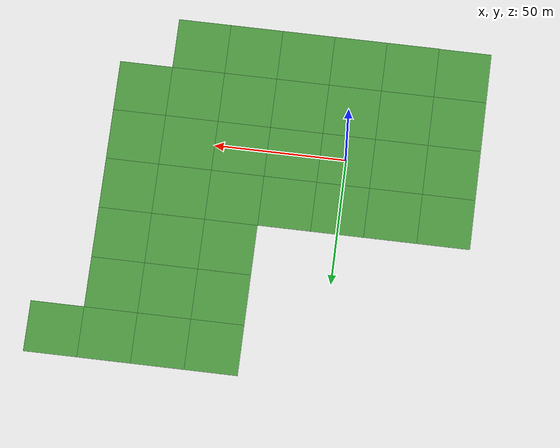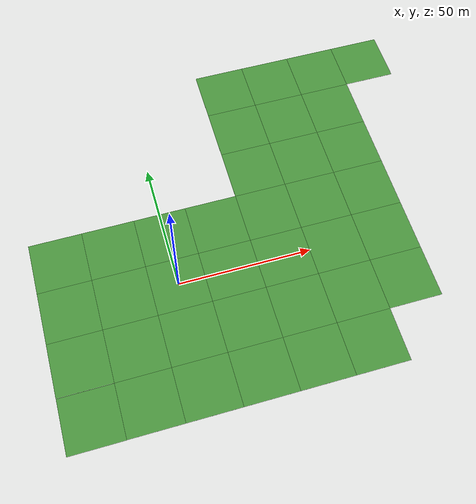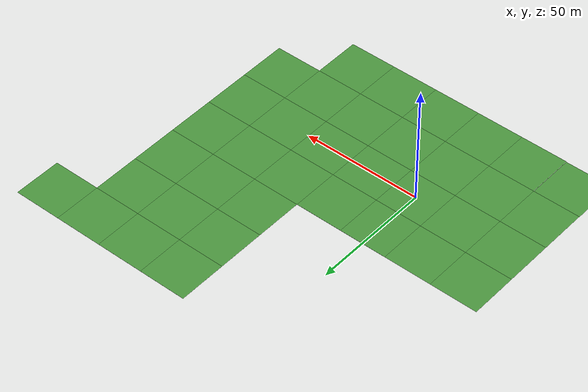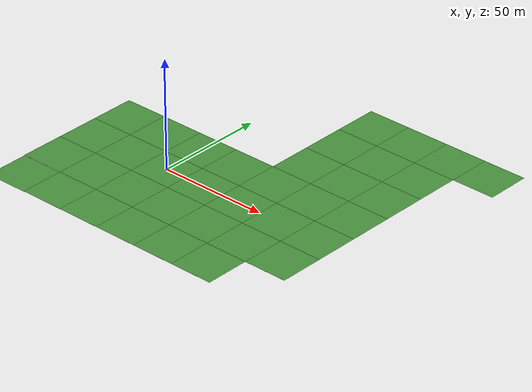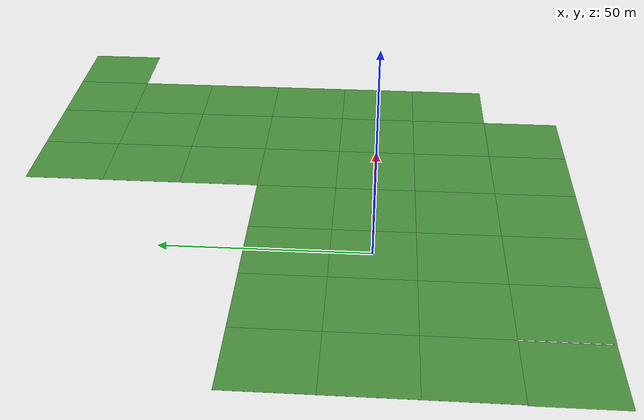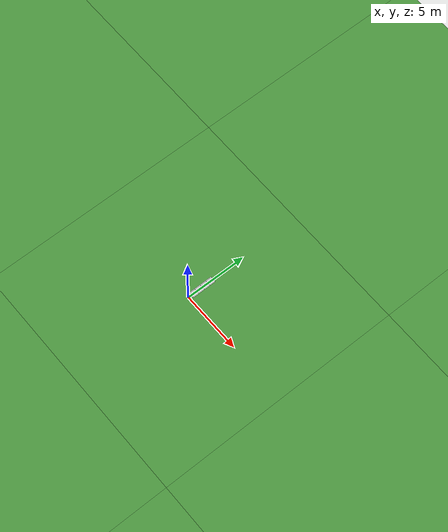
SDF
<sdf version="1.4">
 <world name="default">
  <scene><ambient>0.2 0.2 0.2 1.0</ambient><grid>false</grid></scene>
  <physics type="ode">
   <gravity>0 0 -9.81</gravity>
   <ode>
    <solver>
     <use_dynamic_moi_rescaling>true</use_dynamic_moi_rescaling>
     <type>quick</type>
     <iters>20</iters>
     <sor>1.4</sor>
    </solver>
   </ode>
  </physics>
  <light type="directional" name="sun">
   <cast_shadows>false</cast_shadows>
   <pose>0 0 100 0 0 0</pose>
   <diffuse>0.8 0.8 0.8 1</diffuse>
   <specular>0.9 0.9 0.9 1</specular>
   <attenuation>
    <range>1000</range>
    <constant>0.9</constant>
    <linear>0.01</linear>
    <quadratic>0.001</quadratic>
   </attenuation>
   <direction>0.2 0.2 -0.9</direction>
  </light>
  <include><pose>0 0.5 0.011 0 0 0</pose><uri>model://concrete_slab_small</uri></include>
  <include><pose>0 1.0 0.011 0 0 0</pose><uri>model://concrete_slab_small</uri></include>
  <include><pose>0 1.5 0.011 0 0 0</pose><uri>model://concrete_slab_small</uri></include>
  <include><pose>0 2.0 0.011 0 0 0</pose><uri>model://concrete_slab_small</uri></include>
  <plugin name="SimEvents" filename="libSimEventsPlugin.so">
   <region><name>slab_0</name><volume><min>-0.5 0.5  0</min><max>0.5 1.0 10</max></volume></region>
   <region><name>slab_1</name><volume><min>-0.5 1.0  0</min><max>0.5 1.5 10</max></volume></region>
   <region><name>slab_2</name><volume><min>-0.5 1.5  0</min><max>0.5 2.0 10</max></volume></region>
   <region><name>slab_3</name><volume><min>-0.5 2.0  0</min><max>0.5 2.5 10</max></volume></region>
   <event><name>state</name><type>sim_state</type></event>
   <event><name>existence</name><type>existence</type></event>
   <event><name>on_slab_0</name><type>inclusion</type><model>vehicle</model><region>slab_0</region></event>
   <event><name>on_slab_1</name><type>inclusion</type><model>vehicle</model><region>slab_1</region></event>
   <event><name>on_slab_2</name><type>inclusion</type><model>vehicle</model><region>slab_2</region></event>
   <event><name>on_slab_3</name><type>inclusion</type><model>vehicle</model><region>slab_3</region></event>
  </plugin>
  <include><uri>model://vrc_driving_terrain</uri></include>
  <model name="road_boxes">
   <static>true</static>
   <link name="link">
    <collision name="collision_0">
     <pose>0 5 0 0 0 0</pose>
     <geometry><box><size>7.34 12 0.02</size></box></geometry>
     <surface><friction><ode><mu>0.8</mu><mu2>0.8</mu2></ode></friction></surface>
    </collision>
    <collision name="collision_1">
     <pose>51 10 0 0 0 0</pose>
     <geometry><box><size>102 7.34 0.02</size></box></geometry>
     <surface><friction><ode><mu>0.8</mu><mu2>0.8</mu2></ode></friction></surface>
    </collision>
    <collision name="collision_2">
     <pose>125 25 0 0 0 0.78539</pose>
     <geometry><box><size>72 7.34 0.02</size></box></geometry>
     <surface><friction><ode><mu>0.8</mu><mu2>0.8</mu2></ode></friction></surface>
    </collision>
    <collision name="collision_3">
     <pose>150 75 0 0 0 0</pose>
     <geometry><box><size>7.34 53 0.02</size></box></geometry>
     <surface><friction><ode><mu>0.8</mu><mu2>0.8</mu2></ode></friction></surface>
    </collision>
    <collision name="collision_4">
     <pose>173.5 100 0 0 0 0</pose>
     <geometry><box><size>54.5 7.34 0.02</size></box></geometry>
     <surface><friction><ode><mu>0.8</mu><mu2>0.8</mu2></ode></friction></surface>
    </collision>
    <collision name="collision_5">
     <pose>198 106 0 0 0 0</pose>
     <geometry><box><size>6 5 0.02</size></box></geometry>
     <surface><friction><ode><mu>0.8</mu><mu2>0.8</mu2></ode></friction></surface>
    </collision>
   </link>
  </model>
 </world>
</sdf>

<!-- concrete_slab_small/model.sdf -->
<sdf version="1.5">
  <model name="concrete_slab_small">
    <static>true</static>

    <link name="slab">
      <pose>0 0 0.0001 0 0 0</pose>
      <collision name="collision">
        <geometry>
          <plane>
            <normal>0 0 1</normal>
            <size>0.5 0.5</size>
          </plane>
        </geometry>
        <surface>
          <friction>
            <ode>
              <mu>100</mu>
              <mu2>50</mu2>
            </ode>
          </friction>
        </surface>
      </collision>

      <visual name="concrete">
        <cast_shadows>false</cast_shadows>
        <geometry>
          <plane>
            <normal>0 0 1</normal>
            <size>0.5 0.5</size>
          </plane>
        </geometry>
        <material>
          <script>
            <uri>model://concrete_slab/materials/scripts/</uri>
            <uri>model://concrete_slab/materials/textures/</uri>
            <name>Mentor2/ConcreteSlab</name>
          </script>
        </material>
      </visual>
    </link>
  </model>
</sdf>

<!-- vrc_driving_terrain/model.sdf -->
<sdf version="1.5">
  <model name="vrc_driving_terrain">
    <static>true</static>
    <link name="link">
    </link>
    <link name="grass_plane">
      <collision name="collision">
        <geometry>
          <plane>
            <normal>0 0 1</normal>
            <size>100 100</size>
          </plane>
        </geometry>
        <surface>
          <friction>
            <ode>
              <mu>0.5</mu>
              <mu2>.5</mu2>
            </ode>
          </friction>
        </surface>
      </collision>
      <visual name="visual_0">
        <pose>-40 -40 0 0 0 0</pose>
        <cast_shadows>false</cast_shadows>
        <geometry>
          <plane>
            <normal>0 0 1</normal>
            <size>20 20</size>
          </plane>
        </geometry>
        <material>
          <script>
            <uri>model://vrc_driving_terrain/materials/scripts</uri>
            <uri>model://vrc_driving_terrain/materials/textures</uri>
            <name>vrc/grass</name>
          </script>
        </material>
      </visual>
      <visual name="visual_1">
        <pose>-20 -40 0 0 0 0</pose>
        <cast_shadows>false</cast_shadows>
        <geometry>
          <plane>
            <normal>0 0 1</normal>
            <size>20 20</size>
          </plane>
        </geometry>
        <material>
          <script>
            <uri>model://vrc_driving_terrain/materials/scripts</uri>
            <uri>model://vrc_driving_terrain/materials/textures</uri>
            <name>vrc/grass</name>
          </script>
        </material>
      </visual>
      <visual name="visual_2">
        <pose>0 -40 0 0 0 0</pose>
        <cast_shadows>false</cast_shadows>
        <geometry>
          <plane>
            <normal>0 0 1</normal>
            <size>20 20</size>
          </plane>
        </geometry>
        <material>
          <script>
            <uri>model://vrc_driving_terrain/materials/scripts</uri>
            <uri>model://vrc_driving_terrain/materials/textures</uri>
            <name>vrc/grass</name>
          </script>
        </material>
      </visual>
      <visual name="visual_3">
        <pose>20 -40 0 0 0 0</pose>
        <cast_shadows>false</cast_shadows>
        <geometry>
          <plane>
            <normal>0 0 1</normal>
            <size>20 20</size>
          </plane>
        </geometry>
        <material>
          <script>
            <uri>model://vrc_driving_terrain/materials/scripts</uri>
            <uri>model://vrc_driving_terrain/materials/textures</uri>
            <name>vrc/grass</name>
          </script>
        </material>
      </visual>
      <visual name="visual_4">
        <pose>40 -40 0 0 0 0</pose>
        <cast_shadows>false</cast_shadows>
        <geometry>
          <plane>
            <normal>0 0 1</normal>
            <size>20 20</size>
          </plane>
        </geometry>
        <material>
          <script>
            <uri>model://vrc_driving_terrain/materials/scripts</uri>
            <uri>model://vrc_driving_terrain/materials/textures</uri>
            <name>vrc/grass</name>
          </script>
        </material>
      </visual>
      <visual name="visual_5">
        <pose>60 -40 0 0 0 0</pose>
        <cast_shadows>false</cast_shadows>
        <geometry>
          <plane>
            <normal>0 0 1</normal>
            <size>20 20</size>
          </plane>
        </geometry>
        <material>
          <script>
            <uri>model://vrc_driving_terrain/materials/scripts</uri>
            <uri>model://vrc_driving_terrain/materials/textures</uri>
            <name>vrc/grass</name>
          </script>
        </material>
      </visual>
      <visual name="visual_6">
        <pose>-40 -20 0 0 0 0</pose>
        <cast_shadows>false</cast_shadows>
        <geometry>
          <plane>
            <normal>0 0 1</normal>
            <size>20 20</size>
          </plane>
        </geometry>
        <material>
          <script>
            <uri>model://vrc_driving_terrain/materials/scripts</uri>
            <uri>model://vrc_driving_terrain/materials/textures</uri>
            <name>vrc/grass</name>
          </script>
        </material>
      </visual>
      <visual name="visual_7">
        <pose>-20 -20 0 0 0 0</pose>
        <cast_shadows>false</cast_shadows>
        <geometry>
          <plane>
            <normal>0 0 1</normal>
            <size>20 20</size>
          </plane>
        </geometry>
        <material>
          <script>
            <uri>model://vrc_driving_terrain/materials/scripts</uri>
            <uri>model://vrc_driving_terrain/materials/textures</uri>
            <name>vrc/grass</name>
          </script>
        </material>
      </visual>
      <visual name="visual_8">
        <pose>0 -20 0 0 0 0</pose>
        <cast_shadows>false</cast_shadows>
        <geometry>
          <plane>
            <normal>0 0 1</normal>
            <size>20 20</size>
          </plane>
        </geometry>
        <material>
          <script>
            <uri>model://vrc_driving_terrain/materials/scripts</uri>
            <uri>model://vrc_driving_terrain/materials/textures</uri>
            <name>vrc/grass</name>
          </script>
        </material>
      </visual>
      <visual name="visual_9">
        <pose>20 -20 0 0 0 0</pose>
        <cast_shadows>false</cast_shadows>
        <geometry>
          <plane>
            <normal>0 0 1</normal>
            <size>20 20</size>
          </plane>
        </geometry>
        <material>
          <script>
            <uri>model://vrc_driving_terrain/materials/scripts</uri>
            <uri>model://vrc_driving_terrain/materials/textures</uri>
            <name>vrc/grass</name>
          </script>
        </material>
      </visual>
      <visual name="visual_10">
        <pose>40 -20 0 0 0 0</pose>
        <cast_shadows>false</cast_shadows>
        <geometry>
          <plane>
            <normal>0 0 1</normal>
            <size>20 20</size>
          </plane>
        </geometry>
        <material>
          <script>
            <uri>model://vrc_driving_terrain/materials/scripts</uri>
            <uri>model://vrc_driving_terrain/materials/textures</uri>
            <name>vrc/grass</name>
          </script>
        </material>
      </visual>
      <visual name="visual_11">
        <pose>60 -20 0 0 0 0</pose>
        <cast_shadows>false</cast_shadows>
        <geometry>
          <plane>
            <normal>0 0 1</normal>
            <size>20 20</size>
          </plane>
        </geometry>
        <material>
          <script>
            <uri>model://vrc_driving_terrain/materials/scripts</uri>
            <uri>model://vrc_driving_terrain/materials/textures</uri>
            <name>vrc/grass</name>
          </script>
        </material>
      </visual>
      <visual name="visual_12">
        <pose>80 -20 0 0 0 0</pose>
        <cast_shadows>false</cast_shadows>
        <geometry>
          <plane>
            <normal>0 0 1</normal>
            <size>20 20</size>
          </plane>
        </geometry>
        <material>
          <script>
            <uri>model://vrc_driving_terrain/materials/scripts</uri>
            <uri>model://vrc_driving_terrain/materials/textures</uri>
            <name>vrc/grass</name>
          </script>
        </material>
      </visual>
      <visual name="visual_13">
        <pose>-40 0 0 0 0 0</pose>
        <cast_shadows>false</cast_shadows>
        <geometry>
          <plane>
            <normal>0 0 1</normal>
            <size>20 20</size>
          </plane>
        </geometry>
        <material>
          <script>
            <uri>model://vrc_driving_terrain/materials/scripts</uri>
            <uri>model://vrc_driving_terrain/materials/textures</uri>
            <name>vrc/grass</name>
          </script>
        </material>
      </visual>
      <visual name="visual_14">
        <pose>-20 0 0 0 0 0</pose>
        <cast_shadows>false</cast_shadows>
        <geometry>
          <plane>
            <normal>0 0 1</normal>
            <size>20 20</size>
          </plane>
        </geometry>
        <material>
          <script>
            <uri>model://vrc_driving_terrain/materials/scripts</uri>
            <uri>model://vrc_driving_terrain/materials/textures</uri>
            <name>vrc/grass</name>
          </script>
        </material>
      </visual>
      <visual name="visual_15">
        <pose>0 0 0 0 0 0</pose>
        <cast_shadows>false</cast_shadows>
        <geometry>
          <plane>
            <normal>0 0 1</normal>
            <size>20 20</size>
          </plane>
        </geometry>
        <material>
          <script>
            <uri>model://vrc_driving_terrain/materials/scripts</uri>
            <uri>model://vrc_driving_terrain/materials/textures</uri>
            <name>vrc/grass</name>
          </script>
        </material>
      </visual>
      <visual name="visual_16">
        <pose>20 0 0 0 0 0</pose>
        <cast_shadows>false</cast_shadows>
        <geometry>
          <plane>
            <normal>0 0 1</normal>
            <size>20 20</size>
          </plane>
        </geometry>
        <material>
          <script>
            <uri>model://vrc_driving_terrain/materials/scripts</uri>
            <uri>model://vrc_driving_terrain/materials/textures</uri>
            <name>vrc/grass</name>
          </script>
        </material>
      </visual>
      <visual name="visual_17">
        <pose>40 0 0 0 0 0</pose>
        <cast_shadows>false</cast_shadows>
        <geometry>
          <plane>
            <normal>0 0 1</normal>
            <size>20 20</size>
          </plane>
        </geometry>
        <material>
          <script>
            <uri>model://vrc_driving_terrain/materials/scripts</uri>
            <uri>model://vrc_driving_terrain/materials/textures</uri>
            <name>vrc/grass</name>
          </script>
        </material>
      </visual>
      <visual name="visual_18">
        <pose>60 0 0 0 0 0</pose>
        <cast_shadows>false</cast_shadows>
        <geometry>
          <plane>
            <normal>0 0 1</normal>
            <size>20 20</size>
          </plane>
        </geometry>
        <material>
          <script>
            <uri>model://vrc_driving_terrain/materials/scripts</uri>
            <uri>model://vrc_driving_terrain/materials/textures</uri>
            <name>vrc/grass</name>
          </script>
        </material>
      </visual>
      <visual name="visual_19">
        <pose>80 0 0 0 0 0</pose>
        <cast_shadows>false</cast_shadows>
        <geometry>
          <plane>
            <normal>0 0 1</normal>
            <size>20 20</size>
          </plane>
        </geometry>
        <material>
          <script>
            <uri>model://vrc_driving_terrain/materials/scripts</uri>
            <uri>model://vrc_driving_terrain/materials/textures</uri>
            <name>vrc/grass</name>
          </script>
        </material>
      </visual>
      <visual name="visual_22">
        <pose>-40 20 0 0 0 0</pose>
        <cast_shadows>false</cast_shadows>
        <geometry>
          <plane>
            <normal>0 0 1</normal>
            <size>20 20</size>
          </plane>
        </geometry>
        <material>
          <script>
            <uri>model://vrc_driving_terrain/materials/scripts</uri>
            <uri>model://vrc_driving_terrain/materials/textures</uri>
            <name>vrc/grass</name>
          </script>
        </material>
      </visual>
      <visual name="visual_23">
        <pose>-20 20 0 0 0 0</pose>
        <cast_shadows>false</cast_shadows>
        <geometry>
          <plane>
            <normal>0 0 1</normal>
            <size>20 20</size>
          </plane>
        </geometry>
        <material>
          <script>
            <uri>model://vrc_driving_terrain/materials/scripts</uri>
            <uri>model://vrc_driving_terrain/materials/textures</uri>
            <name>vrc/grass</name>
          </script>
        </material>
      </visual>
      <visual name="visual_24">
        <pose>0 20 0 0 0 0</pose>
        <cast_shadows>false</cast_shadows>
        <geometry>
          <plane>
            <normal>0 0 1</normal>
            <size>20 20</size>
          </plane>
        </geometry>
        <material>
          <script>
            <uri>model://vrc_driving_terrain/materials/scripts</uri>
            <uri>model://vrc_driving_terrain/materials/textures</uri>
            <name>vrc/grass</name>
          </script>
        </material>
      </visual>
      <visual name="visual_25">
        <pose>20 20 0 0 0 0</pose>
        <cast_shadows>false</cast_shadows>
        <geometry>
          <plane>
            <normal>0 0 1</normal>
            <size>20 20</size>
          </plane>
        </geometry>
        <material>
          <script>
            <uri>model://vrc_driving_terrain/materials/scripts</uri>
            <uri>model://vrc_driving_terrain/materials/textures</uri>
            <name>vrc/grass</name>
          </script>
        </material>
      </visual>
      <visual name="visual_26">
        <pose>40 20 0 0 0 0</pose>
        <cast_shadows>false</cast_shadows>
        <geometry>
          <plane>
            <normal>0 0 1</normal>
            <size>20 20</size>
          </plane>
        </geometry>
        <material>
          <script>
            <uri>model://vrc_driving_terrain/materials/scripts</uri>
            <uri>model://vrc_driving_terrain/materials/textures</uri>
            <name>vrc/grass</name>
          </script>
        </material>
      </visual>
      <visual name="visual_27">
        <pose>60 20 0 0 0 0</pose>
        <cast_shadows>false</cast_shadows>
        <geometry>
          <plane>
            <normal>0 0 1</normal>
            <size>20 20</size>
          </plane>
        </geometry>
        <material>
          <script>
            <uri>model://vrc_driving_terrain/materials/scripts</uri>
            <uri>model://vrc_driving_terrain/materials/textures</uri>
            <name>vrc/grass</name>
          </script>
        </material>
      </visual>
      <visual name="visual_28">
        <pose>80 20 0 0 0 0</pose>
        <cast_shadows>false</cast_shadows>
        <geometry>
          <plane>
            <normal>0 0 1</normal>
            <size>20 20</size>
          </plane>
        </geometry>
        <material>
          <script>
            <uri>model://vrc_driving_terrain/materials/scripts</uri>
            <uri>model://vrc_driving_terrain/materials/textures</uri>
            <name>vrc/grass</name>
          </script>
        </material>
      </visual>
      <visual name="visual_32">
        <pose>40 40 0 0 0 0</pose>
        <cast_shadows>false</cast_shadows>
        <geometry>
          <plane>
            <normal>0 0 1</normal>
            <size>20 20</size>
          </plane>
        </geometry>
        <material>
          <script>
            <uri>model://vrc_driving_terrain/materials/scripts</uri>
            <uri>model://vrc_driving_terrain/materials/textures</uri>
            <name>vrc/grass</name>
          </script>
        </material>
      </visual>
      <visual name="visual_33">
        <pose>60 40 0 0 0 0</pose>
        <cast_shadows>false</cast_shadows>
        <geometry>
          <plane>
            <normal>0 0 1</normal>
            <size>20 20</size>
          </plane>
        </geometry>
        <material>
          <script>
            <uri>model://vrc_driving_terrain/materials/scripts</uri>
            <uri>model://vrc_driving_terrain/materials/textures</uri>
            <name>vrc/grass</name>
          </script>
        </material>
      </visual>
      <visual name="visual_34">
        <pose>80 40 0 0 0 0</pose>
        <cast_shadows>false</cast_shadows>
        <geometry>
          <plane>
            <normal>0 0 1</normal>
            <size>20 20</size>
          </plane>
        </geometry>
        <material>
          <script>
            <uri>model://vrc_driving_terrain/materials/scripts</uri>
            <uri>model://vrc_driving_terrain/materials/textures</uri>
            <name>vrc/grass</name>
          </script>
        </material>
      </visual>
      <visual name="visual_39">
        <pose>40 60 0 0 0 0</pose>
        <cast_shadows>false</cast_shadows>
        <geometry>
          <plane>
            <normal>0 0 1</normal>
            <size>20 20</size>
          </plane>
        </geometry>
        <material>
          <script>
            <uri>model://vrc_driving_terrain/materials/scripts</uri>
            <uri>model://vrc_driving_terrain/materials/textures</uri>
            <name>vrc/grass</name>
          </script>
        </material>
      </visual>
      <visual name="visual_40">
        <pose>60 60 0 0 0 0</pose>
        <cast_shadows>false</cast_shadows>
        <geometry>
          <plane>
            <normal>0 0 1</normal>
            <size>20 20</size>
          </plane>
        </geometry>
        <material>
          <script>
            <uri>model://vrc_driving_terrain/materials/scripts</uri>
            <uri>model://vrc_driving_terrain/materials/textures</uri>
            <name>vrc/grass</name>
          </script>
        </material>
      </visual>
      <visual name="visual_41">
        <pose>80 60 0 0 0 0</pose>
        <cast_shadows>false</cast_shadows>
        <geometry>
          <plane>
            <normal>0 0 1</normal>
            <size>20 20</size>
          </plane>
        </geometry>
        <material>
          <script>
            <uri>model://vrc_driving_terrain/materials/scripts</uri>
            <uri>model://vrc_driving_terrain/materials/textures</uri>
            <name>vrc/grass</name>
          </script>
        </material>
      </visual>
      <visual name="visual_46">
        <pose>40 80 0 0 0 0</pose>
        <cast_shadows>false</cast_shadows>
        <geometry>
          <plane>
            <normal>0 0 1</normal>
            <size>20 20</size>
          </plane>
        </geometry>
        <material>
          <script>
            <uri>model://vrc_driving_terrain/materials/scripts</uri>
            <uri>model://vrc_driving_terrain/materials/textures</uri>
            <name>vrc/grass</name>
          </script>
        </material>
      </visual>
      <visual name="visual_47">
        <pose>60 80 0 0 0 0</pose>
        <cast_shadows>false</cast_shadows>
        <geometry>
          <plane>
            <normal>0 0 1</normal>
            <size>20 20</size>
          </plane>
        </geometry>
        <material>
          <script>
            <uri>model://vrc_driving_terrain/materials/scripts</uri>
            <uri>model://vrc_driving_terrain/materials/textures</uri>
            <name>vrc/grass</name>
          </script>
        </material>
      </visual>
      <visual name="visual_48">
        <pose>80 80 0 0 0 0</pose>
        <cast_shadows>false</cast_shadows>
        <geometry>
          <plane>
            <normal>0 0 1</normal>
            <size>20 20</size>
          </plane>
        </geometry>
        <material>
          <script>
            <uri>model://vrc_driving_terrain/materials/scripts</uri>
            <uri>model://vrc_driving_terrain/materials/textures</uri>
            <name>vrc/grass</name>
          </script>
        </material>
      </visual>
      <visual name="visual_49">
        <pose>100 80 0 0 0 0</pose>
        <cast_shadows>false</cast_shadows>
        <geometry>
          <plane>
            <normal>0 0 1</normal>
            <size>20 20</size>
          </plane>
        </geometry>
        <material>
          <script>
            <uri>model://vrc_driving_terrain/materials/scripts</uri>
            <uri>model://vrc_driving_terrain/materials/textures</uri>
            <name>vrc/grass</name>
          </script>
        </material>
      </visual>
    </link>
  </model>
</sdf>
